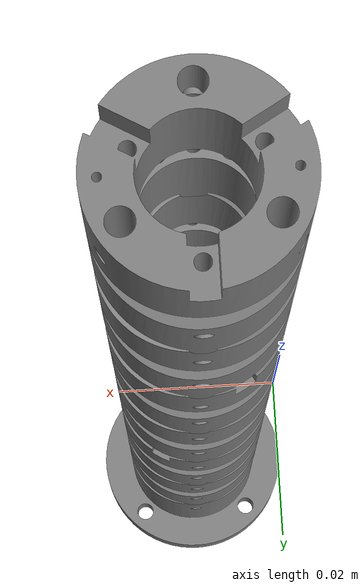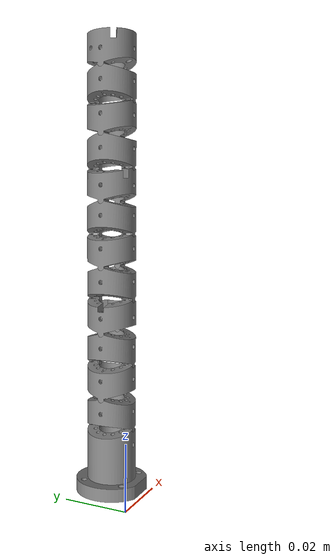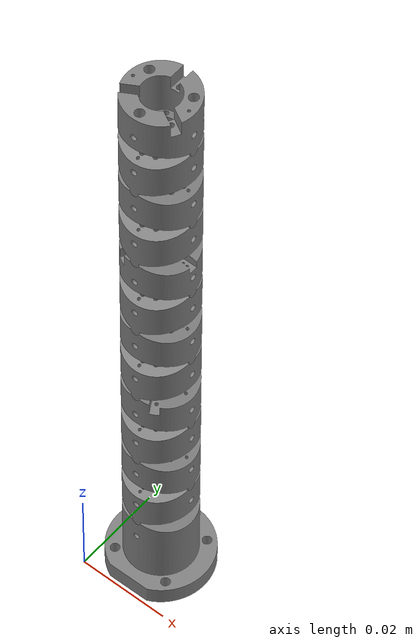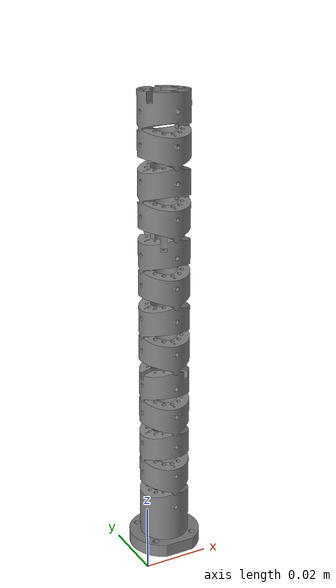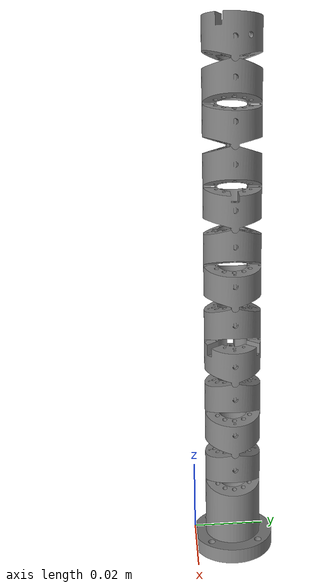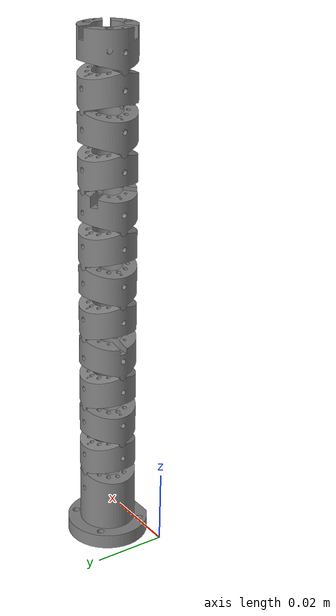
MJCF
<mujoco model="segmented_visuals_template">
  <asset>
    <mesh name="base_visual_mesh" file="../meshes/mujoco_visual_segments/base_visual.stl" scale="0.001 0.001 0.001"/>
    <mesh name="segment_1_link_1_visual_mesh" file="../meshes/mujoco_visual_segments/segment_1_link_1_visual.stl" scale="0.001 0.001 0.001"/>
    <mesh name="segment_1_link_2_visual_mesh" file="../meshes/mujoco_visual_segments/segment_1_link_2_visual.stl" scale="0.001 0.001 0.001"/>
    <mesh name="segment_1_link_3_visual_mesh" file="../meshes/mujoco_visual_segments/segment_1_link_3_visual.stl" scale="0.001 0.001 0.001"/>
    <mesh name="segment_1_link_4_visual_mesh" file="../meshes/mujoco_visual_segments/segment_1_link_4_visual.stl" scale="0.001 0.001 0.001"/>
    <mesh name="segment_2_link_1_visual_mesh" file="../meshes/mujoco_visual_segments/segment_2_link_1_visual.stl" scale="0.001 0.001 0.001"/>
    <mesh name="segment_2_link_2_visual_mesh" file="../meshes/mujoco_visual_segments/segment_2_link_2_visual.stl" scale="0.001 0.001 0.001"/>
    <mesh name="segment_2_link_3_visual_mesh" file="../meshes/mujoco_visual_segments/segment_2_link_3_visual.stl" scale="0.001 0.001 0.001"/>
    <mesh name="segment_2_link_4_visual_mesh" file="../meshes/mujoco_visual_segments/segment_2_link_4_visual.stl" scale="0.001 0.001 0.001"/>
    <mesh name="segment_3_link_1_visual_mesh" file="../meshes/mujoco_visual_segments/segment_3_link_1_visual.stl" scale="0.001 0.001 0.001"/>
    <mesh name="segment_3_link_2_visual_mesh" file="../meshes/mujoco_visual_segments/segment_3_link_2_visual.stl" scale="0.001 0.001 0.001"/>
    <mesh name="segment_3_link_3_visual_mesh" file="../meshes/mujoco_visual_segments/segment_3_link_3_visual.stl" scale="0.001 0.001 0.001"/>
    <mesh name="segment_3_link_4_visual_mesh" file="../meshes/mujoco_visual_segments/segment_3_link_4_visual.stl" scale="0.001 0.001 0.001"/>
  </asset>

  <worldbody>
    <body name="base">
      <geom name="base_visual_geom" type="mesh" mesh="base_visual_mesh" contype="0" conaffinity="0" density="0" group="1"/>

      <body name="segment_1_link_1">
        <geom name="segment_1_link_1_visual_geom" type="mesh" mesh="segment_1_link_1_visual_mesh" contype="0" conaffinity="0" density="0" group="1"/>
        <body name="segment_1_link_2">
          <geom name="segment_1_link_2_visual_geom" type="mesh" mesh="segment_1_link_2_visual_mesh" contype="0" conaffinity="0" density="0" group="1"/>
          <body name="segment_1_link_3">
            <geom name="segment_1_link_3_visual_geom" type="mesh" mesh="segment_1_link_3_visual_mesh" contype="0" conaffinity="0" density="0" group="1"/>
            <body name="segment_1_link_4">
              <geom name="segment_1_link_4_visual_geom" type="mesh" mesh="segment_1_link_4_visual_mesh" contype="0" conaffinity="0" density="0" group="1"/>

              <body name="segment_2_link_1">
                <geom name="segment_2_link_1_visual_geom" type="mesh" mesh="segment_2_link_1_visual_mesh" contype="0" conaffinity="0" density="0" group="1"/>
                <body name="segment_2_link_2">
                  <geom name="segment_2_link_2_visual_geom" type="mesh" mesh="segment_2_link_2_visual_mesh" contype="0" conaffinity="0" density="0" group="1"/>
                  <body name="segment_2_link_3">
                    <geom name="segment_2_link_3_visual_geom" type="mesh" mesh="segment_2_link_3_visual_mesh" contype="0" conaffinity="0" density="0" group="1"/>
                    <body name="segment_2_link_4">
                      <geom name="segment_2_link_4_visual_geom" type="mesh" mesh="segment_2_link_4_visual_mesh" contype="0" conaffinity="0" density="0" group="1"/>

                      <body name="segment_3_link_1">
                        <geom name="segment_3_link_1_visual_geom" type="mesh" mesh="segment_3_link_1_visual_mesh" contype="0" conaffinity="0" density="0" group="1"/>
                        <body name="segment_3_link_2">
                          <geom name="segment_3_link_2_visual_geom" type="mesh" mesh="segment_3_link_2_visual_mesh" contype="0" conaffinity="0" density="0" group="1"/>
                          <body name="segment_3_link_3">
                            <geom name="segment_3_link_3_visual_geom" type="mesh" mesh="segment_3_link_3_visual_mesh" contype="0" conaffinity="0" density="0" group="1"/>
                            <body name="segment_3_link_4">
                              <geom name="segment_3_link_4_visual_geom" type="mesh" mesh="segment_3_link_4_visual_mesh" contype="0" conaffinity="0" density="0" group="1"/>
                            </body>
                          </body>
                        </body>
                      </body>
                    </body>
                  </body>
                </body>
              </body>
            </body>
          </body>
        </body>
      </body>
    </body>
  </worldbody>
</mujoco>
